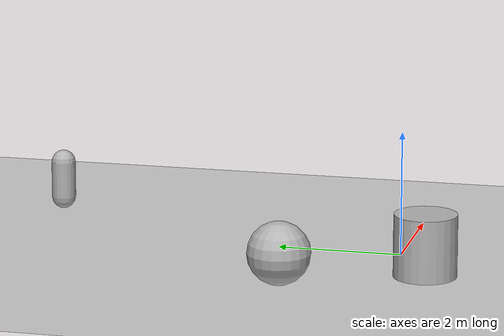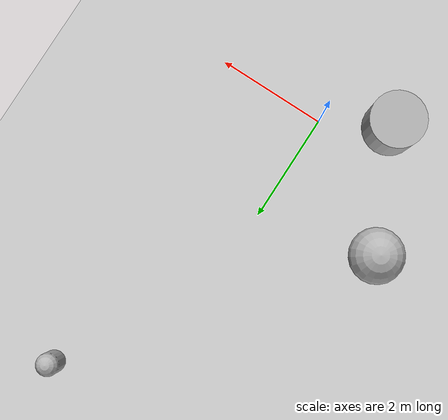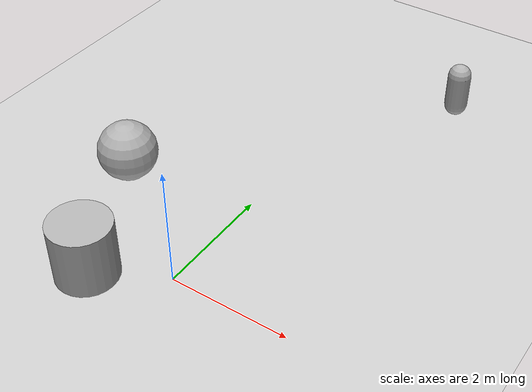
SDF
<sdf version='1.10'>
  <world name='car_world'>
    <physics name='1ms' type='ignored'>
      <max_step_size>0.001</max_step_size>
      <real_time_factor>1</real_time_factor>
      <real_time_update_rate>1000</real_time_update_rate>
    </physics>
    <plugin name='gz::sim::systems::Physics' filename='gz-sim-physics-system'/>
    <plugin name='gz::sim::systems::UserCommands' filename='gz-sim-user-commands-system'/>
    <plugin name='gz::sim::systems::SceneBroadcaster' filename='gz-sim-scene-broadcaster-system'/>
    <gravity>0 0 -9.8000000000000007</gravity>
    <magnetic_field>5.5644999999999998e-06 2.2875799999999999e-05 -4.2388400000000002e-05</magnetic_field>
    <atmosphere type='adiabatic'/>
    <scene>
      <ambient>0.400000006 0.400000006 0.400000006 1</ambient>
      <background>0.699999988 0.699999988 0.699999988 1</background>
      <shadows>true</shadows>
    </scene>
    <model name='ground_plane'>
      <static>true</static>
      <link name='link'>
        <collision name='collision'>
          <geometry>
            <plane>
              <normal>0 0 1</normal>
              <size>1 1</size>
            </plane>
          </geometry>
          <surface>
            <friction>
              <ode/>
            </friction>
            <bounce/>
            <contact/>
          </surface>
        </collision>
        <visual name='visual'>
          <geometry>
            <plane>
              <normal>0 0 1</normal>
              <size>100 100</size>
            </plane>
          </geometry>
          <material>
            <ambient>0.800000012 0.800000012 0.800000012 1</ambient>
            <diffuse>0.800000012 0.800000012 0.800000012 1</diffuse>
            <specular>0.800000012 0.800000012 0.800000012 1</specular>
          </material>
        </visual>
        <pose>0 0 0 0 0 0</pose>
        <inertial>
          <pose>0 0 0 0 0 0</pose>
          <mass>1</mass>
          <inertia>
            <ixx>1</ixx>
            <ixy>0</ixy>
            <ixz>0</ixz>
            <iyy>1</iyy>
            <iyz>0</iyz>
            <izz>1</izz>
          </inertia>
        </inertial>
        <enable_wind>false</enable_wind>
      </link>
      <pose>0 0 0 0 0 0</pose>
      <self_collide>false</self_collide>
    </model>
    <model name='sphere'>
      <pose>-2.112141184642276 1.5130673028851602 0.499999999902001 0 0 0</pose>
      <link name='sphere_link'>
        <inertial>
          <inertia>
            <ixx>0.10000000000000001</ixx>
            <ixy>0</ixy>
            <ixz>0</ixz>
            <iyy>0.10000000000000001</iyy>
            <iyz>0</iyz>
            <izz>0.10000000000000001</izz>
          </inertia>
          <mass>1</mass>
          <pose>0 0 0 0 0 0</pose>
        </inertial>
        <collision name='sphere_collision'>
          <geometry>
            <sphere>
              <radius>0.5</radius>
            </sphere>
          </geometry>
          <surface>
            <friction>
              <ode/>
            </friction>
            <bounce/>
            <contact/>
          </surface>
        </collision>
        <visual name='sphere_visual'>
          <geometry>
            <sphere>
              <radius>0.5</radius>
            </sphere>
          </geometry>
          <material>
            <ambient>0.300000012 0.300000012 0.300000012 1</ambient>
            <diffuse>0.699999988 0.699999988 0.699999988 1</diffuse>
            <specular>1 1 1 1</specular>
          </material>
        </visual>
        <pose>0 0 0 0 0 0</pose>
        <enable_wind>false</enable_wind>
      </link>
      <static>false</static>
      <self_collide>false</self_collide>
    </model>
    <model name='cylinder'>
      <pose>-1.1300277569431794 -0.59311025536997564 0.49999942638036005 -3.3250680443002284e-20 8.3131172980707116e-19 -4.7422847821952609e-21</pose>
      <link name='cylinder_link'>
        <inertial>
          <inertia>
            <ixx>0.14580000000000001</ixx>
            <ixy>0</ixy>
            <ixz>0</ixz>
            <iyy>0.14580000000000001</iyy>
            <iyz>0</iyz>
            <izz>0.125</izz>
          </inertia>
          <mass>1</mass>
          <pose>0 0 0 0 0 0</pose>
        </inertial>
        <collision name='cylinder_collision'>
          <geometry>
            <cylinder>
              <radius>0.5</radius>
              <length>1</length>
            </cylinder>
          </geometry>
          <surface>
            <friction>
              <ode/>
            </friction>
            <bounce/>
            <contact/>
          </surface>
        </collision>
        <visual name='cylinder_visual'>
          <geometry>
            <cylinder>
              <radius>0.5</radius>
              <length>1</length>
            </cylinder>
          </geometry>
          <material>
            <ambient>0.300000012 0.300000012 0.300000012 1</ambient>
            <diffuse>0.699999988 0.699999988 0.699999988 1</diffuse>
            <specular>1 1 1 1</specular>
          </material>
        </visual>
        <pose>0 0 0 0 0 0</pose>
        <enable_wind>false</enable_wind>
      </link>
      <static>false</static>
      <self_collide>false</self_collide>
    </model>
    <model name='capsule'>
      <pose>1.5988053945536818 6.1018240433083504 0.499999999902001 0 0 0</pose>
      <link name='capsule_link'>
        <inertial>
          <inertia>
            <ixx>0.074153999999999998</ixx>
            <ixy>0</ixy>
            <ixz>0</ixz>
            <iyy>0.074153999999999998</iyy>
            <iyz>0</iyz>
            <izz>0.018769000000000001</izz>
          </inertia>
          <mass>1</mass>
          <pose>0 0 0 0 0 0</pose>
        </inertial>
        <collision name='capsule_collision'>
          <geometry>
            <capsule>
              <radius>0.20000000000000001</radius>
              <length>0.59999999999999998</length>
            </capsule>
          </geometry>
          <surface>
            <friction>
              <ode/>
            </friction>
            <bounce/>
            <contact/>
          </surface>
        </collision>
        <visual name='capsule_visual'>
          <geometry>
            <capsule>
              <radius>0.20000000000000001</radius>
              <length>0.59999999999999998</length>
            </capsule>
          </geometry>
          <material>
            <ambient>0.300000012 0.300000012 0.300000012 1</ambient>
            <diffuse>0.699999988 0.699999988 0.699999988 1</diffuse>
            <specular>1 1 1 1</specular>
          </material>
        </visual>
        <pose>0 0 0 0 0 0</pose>
        <enable_wind>false</enable_wind>
      </link>
      <static>false</static>
      <self_collide>false</self_collide>
    </model>
    <light name='sun' type='directional'>
      <pose>0 0 10 0 0 0</pose>
      <cast_shadows>true</cast_shadows>
      <intensity>1</intensity>
      <direction>-0.5 0.10000000000000001 -0.90000000000000002</direction>
      <diffuse>0.800000012 0.800000012 0.800000012 1</diffuse>
      <specular>0.200000003 0.200000003 0.200000003 1</specular>
      <attenuation>
        <range>1000</range>
        <linear>0.0099999997764825821</linear>
        <constant>0.89999997615814209</constant>
        <quadratic>0.0010000000474974513</quadratic>
      </attenuation>
      <spot>
        <inner_angle>0</inner_angle>
        <outer_angle>0</outer_angle>
        <falloff>0</falloff>
      </spot>
    </light>
  </world>
</sdf>
